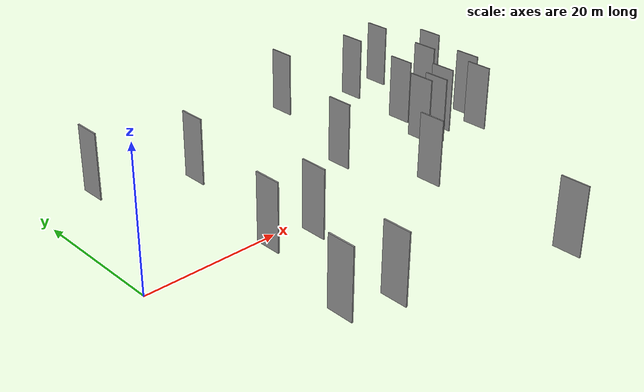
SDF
<sdf version="1.6">
 <world name="default">
  <scene>
   <sky><clouds><speed>12</speed></clouds></sky>
   <ambient>0.4 0.4 0.4 1</ambient>
   <background>0.7 0.7 0.7 1</background>
   <shadows>1</shadows>
  </scene>
  <gravity>0 0 -9.8066</gravity>
  <magnetic_field>6e-06 2.3e-05 -4.2e-05</magnetic_field>
  <physics default="0" name="default_physics" type="ode">
   <ode>
    <solver>
     <type>quick</type>
     <iters>10</iters>
     <sor>1.0</sor>
     <use_dynamic_moi_rescaling>0</use_dynamic_moi_rescaling>
    </solver>
    <constraints>
     <cfm>0</cfm>
     <erp>0.2</erp>
     <contact_max_correcting_vel>100</contact_max_correcting_vel>
     <contact_surface_layer>0.001</contact_surface_layer>
    </constraints>
   </ode>
   <max_step_size>0.004</max_step_size>
   <real_time_factor>1</real_time_factor>
   <real_time_update_rate>250</real_time_update_rate>
  </physics>
  <light name="sun" type="directional">
   <pose>0 0 10 0 0 0</pose>
   <diffuse>0.8 0.8 0.8 1</diffuse>
   <specular>0.2 0.2 0.2 1</specular>
   <attenuation>
    <range>1000</range>
    <constant>0.9</constant>
    <linear>0.01</linear>
    <quadratic>0.001</quadratic>
   </attenuation>
   <direction>-0.5 0.1 -0.9</direction>
  </light>
  <model name="grey_wall_1">
   <static>1</static>
   <pose>8.7410 24.3856 0.0 0.000000 0.000000 1.570796</pose>
   <link name="link">
    <pose>0 0 5.00 0 0 0</pose>
    <collision name="collision"><geometry><box><size>4.00 0.2 10.00</size></box></geometry></collision>
    <visual name="visual">
     <cast_shadows>0</cast_shadows>
     <geometry><box><size>4.00 0.2 10.00</size></box></geometry>
     <material>
      <script>
       <uri>model://grey_wall/materials/scripts</uri>
       <uri>model://grey_wall/materials/textures</uri>
       <name>vrc/grey_wall</name>
      </script>
     </material>
    </visual>
   </link>
  </model>
  <model name="grey_wall_2">
   <static>1</static>
   <pose>58.1791 24.2173 0.0 0.000000 0.000000 1.570796</pose>
   <link name="link">
    <pose>0 0 5.00 0 0 0</pose>
    <collision name="collision"><geometry><box><size>4.00 0.2 10.00</size></box></geometry></collision>
    <visual name="visual">
     <cast_shadows>0</cast_shadows>
     <geometry><box><size>4.00 0.2 10.00</size></box></geometry>
     <material>
      <script>
       <uri>model://grey_wall/materials/scripts</uri>
       <uri>model://grey_wall/materials/textures</uri>
       <name>vrc/grey_wall</name>
      </script>
     </material>
    </visual>
   </link>
  </model>
  <model name="grey_wall_3">
   <static>1</static>
   <pose>45.6811 27.2449 0.0 0.000000 0.000000 1.570796</pose>
   <link name="link">
    <pose>0 0 5.00 0 0 0</pose>
    <collision name="collision"><geometry><box><size>4.00 0.2 10.00</size></box></geometry></collision>
    <visual name="visual">
     <cast_shadows>0</cast_shadows>
     <geometry><box><size>4.00 0.2 10.00</size></box></geometry>
     <material>
      <script>
       <uri>model://grey_wall/materials/scripts</uri>
       <uri>model://grey_wall/materials/textures</uri>
       <name>vrc/grey_wall</name>
      </script>
     </material>
    </visual>
   </link>
  </model>
  <model name="grey_wall_4">
   <static>1</static>
   <pose>45.1599 -3.9711 0.0 0.000000 0.000000 1.570796</pose>
   <link name="link">
    <pose>0 0 5.00 0 0 0</pose>
    <collision name="collision"><geometry><box><size>4.00 0.2 10.00</size></box></geometry></collision>
    <visual name="visual">
     <cast_shadows>0</cast_shadows>
     <geometry><box><size>4.00 0.2 10.00</size></box></geometry>
     <material>
      <script>
       <uri>model://grey_wall/materials/scripts</uri>
       <uri>model://grey_wall/materials/textures</uri>
       <name>vrc/grey_wall</name>
      </script>
     </material>
    </visual>
   </link>
  </model>
  <model name="grey_wall_5">
   <static>1</static>
   <pose>21.5602 18.4425 0.0 0.000000 0.000000 1.570796</pose>
   <link name="link">
    <pose>0 0 5.00 0 0 0</pose>
    <collision name="collision"><geometry><box><size>4.00 0.2 10.00</size></box></geometry></collision>
    <visual name="visual">
     <cast_shadows>0</cast_shadows>
     <geometry><box><size>4.00 0.2 10.00</size></box></geometry>
     <material>
      <script>
       <uri>model://grey_wall/materials/scripts</uri>
       <uri>model://grey_wall/materials/textures</uri>
       <name>vrc/grey_wall</name>
      </script>
     </material>
    </visual>
   </link>
  </model>
  <model name="grey_wall_6">
   <static>1</static>
   <pose>65.2739 25.4562 0.0 0.000000 0.000000 1.570796</pose>
   <link name="link">
    <pose>0 0 5.00 0 0 0</pose>
    <collision name="collision"><geometry><box><size>4.00 0.2 10.00</size></box></geometry></collision>
    <visual name="visual">
     <cast_shadows>0</cast_shadows>
     <geometry><box><size>4.00 0.2 10.00</size></box></geometry>
     <material>
      <script>
       <uri>model://grey_wall/materials/scripts</uri>
       <uri>model://grey_wall/materials/textures</uri>
       <name>vrc/grey_wall</name>
      </script>
     </material>
    </visual>
   </link>
  </model>
  <model name="grey_wall_7">
   <static>1</static>
   <pose>14.1834 -17.8994 0.0 0.000000 0.000000 1.570796</pose>
   <link name="link">
    <pose>0 0 5.00 0 0 0</pose>
    <collision name="collision"><geometry><box><size>4.00 0.2 10.00</size></box></geometry></collision>
    <visual name="visual">
     <cast_shadows>0</cast_shadows>
     <geometry><box><size>4.00 0.2 10.00</size></box></geometry>
     <material>
      <script>
       <uri>model://grey_wall/materials/scripts</uri>
       <uri>model://grey_wall/materials/textures</uri>
       <name>vrc/grey_wall</name>
      </script>
     </material>
    </visual>
   </link>
  </model>
  <model name="grey_wall_8">
   <static>1</static>
   <pose>66.4962 7.3960 0.0 0.000000 0.000000 1.570796</pose>
   <link name="link">
    <pose>0 0 5.00 0 0 0</pose>
    <collision name="collision"><geometry><box><size>4.00 0.2 10.00</size></box></geometry></collision>
    <visual name="visual">
     <cast_shadows>0</cast_shadows>
     <geometry><box><size>4.00 0.2 10.00</size></box></geometry>
     <material>
      <script>
       <uri>model://grey_wall/materials/scripts</uri>
       <uri>model://grey_wall/materials/textures</uri>
       <name>vrc/grey_wall</name>
      </script>
     </material>
    </visual>
   </link>
  </model>
  <model name="grey_wall_9">
   <static>1</static>
   <pose>39.6112 8.2099 0.0 0.000000 0.000000 1.570796</pose>
   <link name="link">
    <pose>0 0 5.00 0 0 0</pose>
    <collision name="collision"><geometry><box><size>4.00 0.2 10.00</size></box></geometry></collision>
    <visual name="visual">
     <cast_shadows>0</cast_shadows>
     <geometry><box><size>4.00 0.2 10.00</size></box></geometry>
     <material>
      <script>
       <uri>model://grey_wall/materials/scripts</uri>
       <uri>model://grey_wall/materials/textures</uri>
       <name>vrc/grey_wall</name>
      </script>
     </material>
    </visual>
   </link>
  </model>
  <model name="grey_wall_10">
   <static>1</static>
   <pose>69.3458 17.5333 0.0 0.000000 0.000000 1.570796</pose>
   <link name="link">
    <pose>0 0 5.00 0 0 0</pose>
    <collision name="collision"><geometry><box><size>4.00 0.2 10.00</size></box></geometry></collision>
    <visual name="visual">
     <cast_shadows>0</cast_shadows>
     <geometry><box><size>4.00 0.2 10.00</size></box></geometry>
     <material>
      <script>
       <uri>model://grey_wall/materials/scripts</uri>
       <uri>model://grey_wall/materials/textures</uri>
       <name>vrc/grey_wall</name>
      </script>
     </material>
    </visual>
   </link>
  </model>
  <model name="grey_wall_11">
   <static>1</static>
   <pose>64.1950 3.3108 0.0 0.000000 0.000000 1.570796</pose>
   <link name="link">
    <pose>0 0 5.00 0 0 0</pose>
    <collision name="collision"><geometry><box><size>4.00 0.2 10.00</size></box></geometry></collision>
    <visual name="visual">
     <cast_shadows>0</cast_shadows>
     <geometry><box><size>4.00 0.2 10.00</size></box></geometry>
     <material>
      <script>
       <uri>model://grey_wall/materials/scripts</uri>
       <uri>model://grey_wall/materials/textures</uri>
       <name>vrc/grey_wall</name>
      </script>
     </material>
    </visual>
   </link>
  </model>
  <model name="grey_wall_12">
   <static>1</static>
   <pose>23.9618 -3.1384 0.0 0.000000 0.000000 1.570796</pose>
   <link name="link">
    <pose>0 0 5.00 0 0 0</pose>
    <collision name="collision"><geometry><box><size>4.00 0.2 10.00</size></box></geometry></collision>
    <visual name="visual">
     <cast_shadows>0</cast_shadows>
     <geometry><box><size>4.00 0.2 10.00</size></box></geometry>
     <material>
      <script>
       <uri>model://grey_wall/materials/scripts</uri>
       <uri>model://grey_wall/materials/textures</uri>
       <name>vrc/grey_wall</name>
      </script>
     </material>
    </visual>
   </link>
  </model>
  <model name="grey_wall_13">
   <static>1</static>
   <pose>20.8192 -20.0079 0.0 0.000000 0.000000 1.570796</pose>
   <link name="link">
    <pose>0 0 5.00 0 0 0</pose>
    <collision name="collision"><geometry><box><size>4.00 0.2 10.00</size></box></geometry></collision>
    <visual name="visual">
     <cast_shadows>0</cast_shadows>
     <geometry><box><size>4.00 0.2 10.00</size></box></geometry>
     <material>
      <script>
       <uri>model://grey_wall/materials/scripts</uri>
       <uri>model://grey_wall/materials/textures</uri>
       <name>vrc/grey_wall</name>
      </script>
     </material>
    </visual>
   </link>
  </model>
  <model name="grey_wall_14">
   <static>1</static>
   <pose>54.3925 6.1045 0.0 0.000000 0.000000 1.570796</pose>
   <link name="link">
    <pose>0 0 5.00 0 0 0</pose>
    <collision name="collision"><geometry><box><size>4.00 0.2 10.00</size></box></geometry></collision>
    <visual name="visual">
     <cast_shadows>0</cast_shadows>
     <geometry><box><size>4.00 0.2 10.00</size></box></geometry>
     <material>
      <script>
       <uri>model://grey_wall/materials/scripts</uri>
       <uri>model://grey_wall/materials/textures</uri>
       <name>vrc/grey_wall</name>
      </script>
     </material>
    </visual>
   </link>
  </model>
  <model name="grey_wall_15">
   <static>1</static>
   <pose>17.5908 -1.7161 0.0 0.000000 0.000000 1.570796</pose>
   <link name="link">
    <pose>0 0 5.00 0 0 0</pose>
    <collision name="collision"><geometry><box><size>4.00 0.2 10.00</size></box></geometry></collision>
    <visual name="visual">
     <cast_shadows>0</cast_shadows>
     <geometry><box><size>4.00 0.2 10.00</size></box></geometry>
     <material>
      <script>
       <uri>model://grey_wall/materials/scripts</uri>
       <uri>model://grey_wall/materials/textures</uri>
       <name>vrc/grey_wall</name>
      </script>
     </material>
    </visual>
   </link>
  </model>
  <model name="grey_wall_16">
   <static>1</static>
   <pose>56.2435 4.8201 0.0 0.000000 0.000000 1.570796</pose>
   <link name="link">
    <pose>0 0 5.00 0 0 0</pose>
    <collision name="collision"><geometry><box><size>4.00 0.2 10.00</size></box></geometry></collision>
    <visual name="visual">
     <cast_shadows>0</cast_shadows>
     <geometry><box><size>4.00 0.2 10.00</size></box></geometry>
     <material>
      <script>
       <uri>model://grey_wall/materials/scripts</uri>
       <uri>model://grey_wall/materials/textures</uri>
       <name>vrc/grey_wall</name>
      </script>
     </material>
    </visual>
   </link>
  </model>
  <model name="grey_wall_17">
   <static>1</static>
   <pose>64.2090 14.1127 0.0 0.000000 0.000000 1.570796</pose>
   <link name="link">
    <pose>0 0 5.00 0 0 0</pose>
    <collision name="collision"><geometry><box><size>4.00 0.2 10.00</size></box></geometry></collision>
    <visual name="visual">
     <cast_shadows>0</cast_shadows>
     <geometry><box><size>4.00 0.2 10.00</size></box></geometry>
     <material>
      <script>
       <uri>model://grey_wall/materials/scripts</uri>
       <uri>model://grey_wall/materials/textures</uri>
       <name>vrc/grey_wall</name>
      </script>
     </material>
    </visual>
   </link>
  </model>
  <model name="grey_wall_18">
   <static>1</static>
   <pose>57.2250 12.7128 0.0 0.000000 0.000000 1.570796</pose>
   <link name="link">
    <pose>0 0 5.00 0 0 0</pose>
    <collision name="collision"><geometry><box><size>4.00 0.2 10.00</size></box></geometry></collision>
    <visual name="visual">
     <cast_shadows>0</cast_shadows>
     <geometry><box><size>4.00 0.2 10.00</size></box></geometry>
     <material>
      <script>
       <uri>model://grey_wall/materials/scripts</uri>
       <uri>model://grey_wall/materials/textures</uri>
       <name>vrc/grey_wall</name>
      </script>
     </material>
    </visual>
   </link>
  </model>
  <model name="grey_wall_19">
   <static>1</static>
   <pose>59.6406 6.4897 0.0 0.000000 0.000000 1.570796</pose>
   <link name="link">
    <pose>0 0 5.00 0 0 0</pose>
    <collision name="collision"><geometry><box><size>4.00 0.2 10.00</size></box></geometry></collision>
    <visual name="visual">
     <cast_shadows>0</cast_shadows>
     <geometry><box><size>4.00 0.2 10.00</size></box></geometry>
     <material>
      <script>
       <uri>model://grey_wall/materials/scripts</uri>
       <uri>model://grey_wall/materials/textures</uri>
       <name>vrc/grey_wall</name>
      </script>
     </material>
    </visual>
   </link>
  </model>
  <model name="grey_wall_20">
   <static>1</static>
   <pose>44.1059 -27.4579 0.0 0.000000 0.000000 1.570796</pose>
   <link name="link">
    <pose>0 0 5.00 0 0 0</pose>
    <collision name="collision"><geometry><box><size>4.00 0.2 10.00</size></box></geometry></collision>
    <visual name="visual">
     <cast_shadows>0</cast_shadows>
     <geometry><box><size>4.00 0.2 10.00</size></box></geometry>
     <material>
      <script>
       <uri>model://grey_wall/materials/scripts</uri>
       <uri>model://grey_wall/materials/textures</uri>
       <name>vrc/grey_wall</name>
      </script>
     </material>
    </visual>
   </link>
  </model>
 </world>
</sdf>
